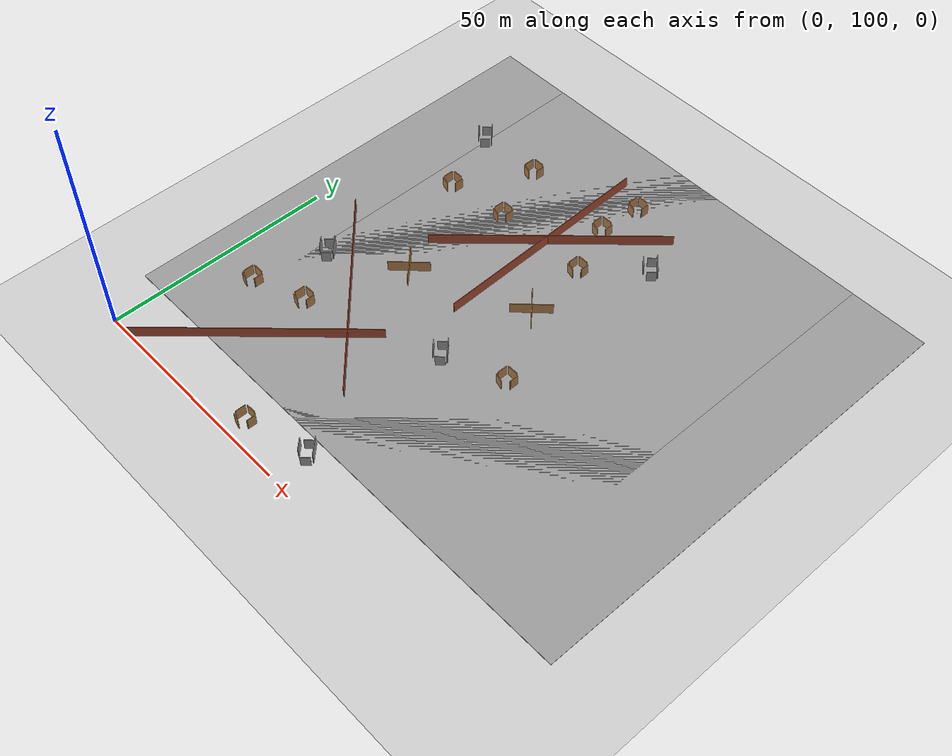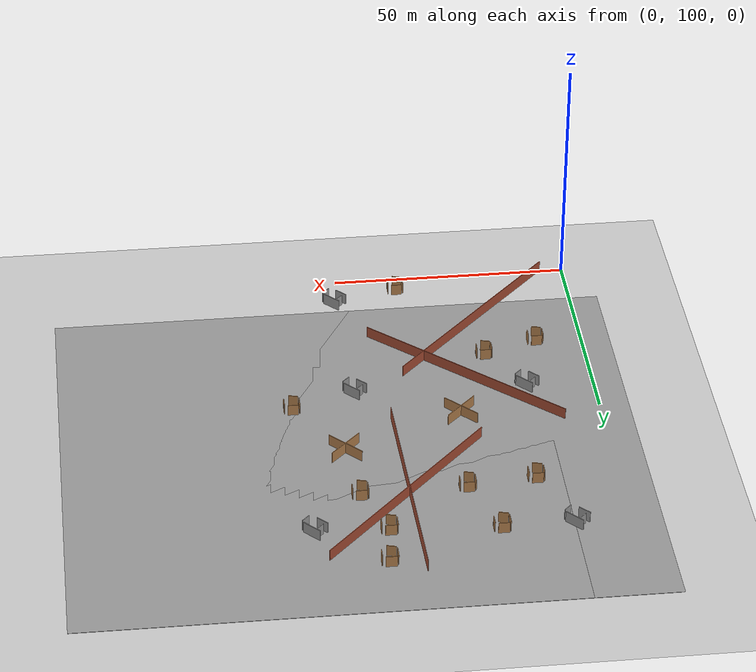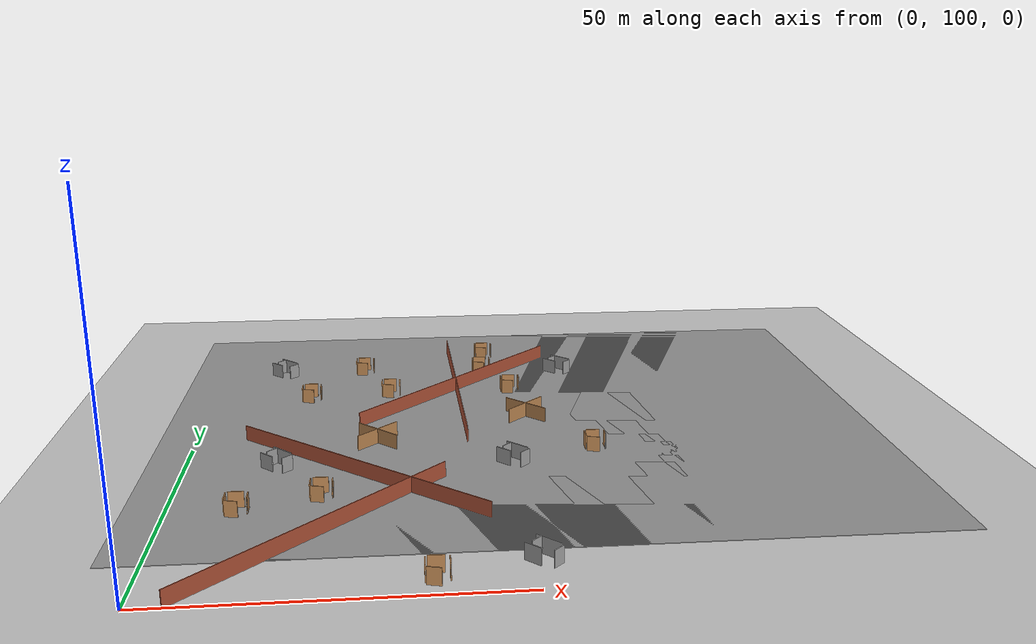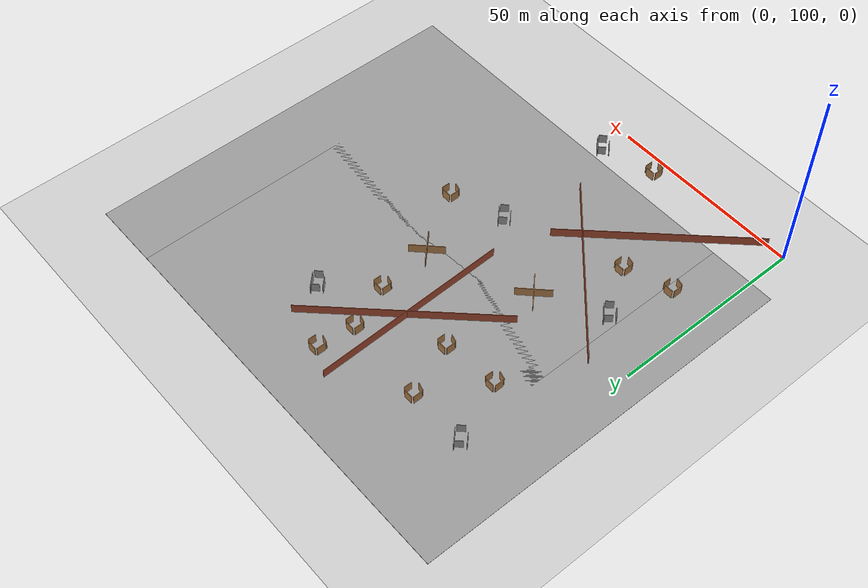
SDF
<sdf version="1.5">
 <world name="default">
  <model name="ground_plane">
   <static>1</static>
   <link name="link">
    <collision name="collision">
     <geometry><plane><normal>0 0 1</normal><size>100 100</size></plane></geometry>
     <surface><friction><ode><mu>100</mu><mu2>50</mu2></ode></friction></surface>
    </collision>
    <visual name="visual">
     <cast_shadows>0</cast_shadows>
     <geometry><plane><normal>0 0 1</normal><size>100 100</size></plane></geometry>
     <material>
      <script><uri>file://media/materials/scripts/gazebo.material</uri><name>Gazebo/Grey</name></script>
     </material>
    </visual>
   </link>
  </model>
  <model name="ground_plane_1">
   <static>1</static>
   <link name="link">
    <collision name="collision">
     <geometry><plane><normal>0 0 1</normal><size>100 100</size></plane></geometry>
     <surface><friction><ode><mu>100</mu><mu2>50</mu2></ode></friction></surface>
    </collision>
    <visual name="visual">
     <cast_shadows>0</cast_shadows>
     <geometry><plane><normal>0 0 1</normal><size>100 100</size></plane></geometry>
     <material>
      <script><uri>file://media/materials/scripts/gazebo.material</uri><name>Gazebo/Grey</name></script>
     </material>
    </visual>
   </link>
   <pose>61.4867 161 0 0 -0 0</pose>
  </model>
  <model name="ground_plane_2">
   <static>1</static>
   <link name="link">
    <collision name="collision">
     <geometry><plane><normal>0 0 1</normal><size>100 100</size></plane></geometry>
     <surface><friction><ode><mu>100</mu><mu2>50</mu2></ode></friction></surface>
    </collision>
    <visual name="visual">
     <cast_shadows>0</cast_shadows>
     <geometry><plane><normal>0 0 1</normal><size>100 100</size></plane></geometry>
     <material>
      <script><uri>file://media/materials/scripts/gazebo.material</uri><name>Gazebo/Grey</name></script>
     </material>
    </visual>
   </link>
   <pose>44 161 0 0 -0 0</pose>
  </model>
  <model name="obs1">
   <pose>31 174.534 0 0 -0 0</pose>
   <link name="Wall_10">
    <collision name="Wall_10_Collision">
     <geometry><box><size>2 0.15 2.5</size></box></geometry>
     <pose>0 0 1.25 0 -0 0</pose>
    </collision>
    <visual name="Wall_10_Visual">
     <pose>0 0 1.25 0 -0 0</pose>
     <geometry><box><size>2 0.15 2.5</size></box></geometry>
     <material>
      <script><uri>file://media/materials/scripts/gazebo.material</uri><name>Gazebo/Wood</name></script>
      <ambient>1 1 1 1</ambient>
     </material>
    </visual>
    <pose>-0.505188 -1.46687 0 0 0 -0.261799</pose>
   </link>
   <link name="Wall_2">
    <collision name="Wall_2_Collision">
     <geometry><box><size>2.25 0.15 2.5</size></box></geometry>
     <pose>0 0 1.25 0 -0 0</pose>
    </collision>
    <visual name="Wall_2_Visual">
     <pose>0 0 1.25 0 -0 0</pose>
     <geometry><box><size>2.25 0.15 2.5</size></box></geometry>
     <material>
      <script><uri>file://media/materials/scripts/gazebo.material</uri><name>Gazebo/Wood</name></script>
      <ambient>1 1 1 1</ambient>
     </material>
    </visual>
    <pose>-1.58039 0.313508 0 0 0 -1.5708</pose>
   </link>
   <link name="Wall_5">
    <collision name="Wall_5_Collision">
     <geometry><box><size>2.25 0.15 2.5</size></box></geometry>
     <pose>0 0 1.25 0 -0 0</pose>
    </collision>
    <visual name="Wall_5_Visual">
     <pose>0 0 1.25 0 -0 0</pose>
     <geometry><box><size>2.25 0.15 2.5</size></box></geometry>
     <material>
      <script><uri>file://media/materials/scripts/gazebo.material</uri><name>Gazebo/Wood</name></script>
      <ambient>1 1 1 1</ambient>
     </material>
    </visual>
    <pose>-0.185262 1.72313 0 0 -0 0</pose>
   </link>
   <link name="Wall_7">
    <collision name="Wall_7_Collision">
     <geometry><box><size>2 0.15 2.5</size></box></geometry>
     <pose>0 0 1.25 0 -0 0</pose>
    </collision>
    <visual name="Wall_7_Visual">
     <pose>0 0 1.25 0 -0 0</pose>
     <geometry><box><size>2 0.15 2.5</size></box></geometry>
     <material>
      <script><uri>file://media/materials/scripts/gazebo.material</uri><name>Gazebo/Wood</name></script>
      <ambient>1 1 1 1</ambient>
     </material>
    </visual>
    <pose>1.58039 0.398833 0 0 0 -1.5708</pose>
   </link>
   <link name="Wall_8">
    <collision name="Wall_8_Collision">
     <geometry><box><size>0.15 0.15 2.5</size></box></geometry>
     <pose>0 0 1.25 0 -0 0</pose>
    </collision>
    <visual name="Wall_8_Visual">
     <pose>0 0 1.25 0 -0 0</pose>
     <geometry><box><size>0.15 0.15 2.5</size></box></geometry>
     <material>
      <script><uri>file://media/materials/scripts/gazebo.material</uri><name>Gazebo/Grey</name></script>
      <ambient>1 1 1 1</ambient>
     </material>
    </visual>
    <pose>1.58039 -0.526167 0 0 -0 0</pose>
   </link>
   <static>1</static>
  </model>
  <model name="obs1_0">
   <pose>52.5346 175 0 0 -0 0</pose>
   <link name="Wall_10">
    <collision name="Wall_10_Collision">
     <geometry><box><size>2 0.15 2.5</size></box></geometry>
     <pose>0 0 1.25 0 -0 0</pose>
    </collision>
    <visual name="Wall_10_Visual">
     <pose>0 0 1.25 0 -0 0</pose>
     <geometry><box><size>2 0.15 2.5</size></box></geometry>
     <material>
      <script><uri>file://media/materials/scripts/gazebo.material</uri><name>Gazebo/Wood</name></script>
      <ambient>1 1 1 1</ambient>
     </material>
    </visual>
    <pose>-0.505188 -1.46687 0 0 0 -0.261799</pose>
   </link>
   <link name="Wall_2">
    <collision name="Wall_2_Collision">
     <geometry><box><size>2.25 0.15 2.5</size></box></geometry>
     <pose>0 0 1.25 0 -0 0</pose>
    </collision>
    <visual name="Wall_2_Visual">
     <pose>0 0 1.25 0 -0 0</pose>
     <geometry><box><size>2.25 0.15 2.5</size></box></geometry>
     <material>
      <script><uri>file://media/materials/scripts/gazebo.material</uri><name>Gazebo/Wood</name></script>
      <ambient>1 1 1 1</ambient>
     </material>
    </visual>
    <pose>-1.58039 0.313508 0 0 0 -1.5708</pose>
   </link>
   <link name="Wall_5">
    <collision name="Wall_5_Collision">
     <geometry><box><size>2.25 0.15 2.5</size></box></geometry>
     <pose>0 0 1.25 0 -0 0</pose>
    </collision>
    <visual name="Wall_5_Visual">
     <pose>0 0 1.25 0 -0 0</pose>
     <geometry><box><size>2.25 0.15 2.5</size></box></geometry>
     <material>
      <script><uri>file://media/materials/scripts/gazebo.material</uri><name>Gazebo/Wood</name></script>
      <ambient>1 1 1 1</ambient>
     </material>
    </visual>
    <pose>-0.185262 1.72313 0 0 -0 0</pose>
   </link>
   <link name="Wall_7">
    <collision name="Wall_7_Collision">
     <geometry><box><size>2 0.15 2.5</size></box></geometry>
     <pose>0 0 1.25 0 -0 0</pose>
    </collision>
    <visual name="Wall_7_Visual">
     <pose>0 0 1.25 0 -0 0</pose>
     <geometry><box><size>2 0.15 2.5</size></box></geometry>
     <material>
      <script><uri>file://media/materials/scripts/gazebo.material</uri><name>Gazebo/Wood</name></script>
      <ambient>1 1 1 1</ambient>
     </material>
    </visual>
    <pose>1.58039 0.398833 0 0 0 -1.5708</pose>
   </link>
   <link name="Wall_8">
    <collision name="Wall_8_Collision">
     <geometry><box><size>0.15 0.15 2.5</size></box></geometry>
     <pose>0 0 1.25 0 -0 0</pose>
    </collision>
    <visual name="Wall_8_Visual">
     <pose>0 0 1.25 0 -0 0</pose>
     <geometry><box><size>0.15 0.15 2.5</size></box></geometry>
     <material>
      <script><uri>file://media/materials/scripts/gazebo.material</uri><name>Gazebo/Grey</name></script>
      <ambient>1 1 1 1</ambient>
     </material>
    </visual>
    <pose>1.58039 -0.526167 0 0 -0 0</pose>
   </link>
   <static>1</static>
  </model>
  <model name="obs1_2">
   <pose>63.592 145.434 0 0 -0 0</pose>
   <link name="Wall_10">
    <collision name="Wall_10_Collision">
     <geometry><box><size>2 0.15 2.5</size></box></geometry>
     <pose>0 0 1.25 0 -0 0</pose>
    </collision>
    <visual name="Wall_10_Visual">
     <pose>0 0 1.25 0 -0 0</pose>
     <geometry><box><size>2 0.15 2.5</size></box></geometry>
     <material>
      <script><uri>file://media/materials/scripts/gazebo.material</uri><name>Gazebo/Wood</name></script>
      <ambient>1 1 1 1</ambient>
     </material>
    </visual>
    <pose>-0.505188 -1.46687 0 0 0 -0.261799</pose>
   </link>
   <link name="Wall_2">
    <collision name="Wall_2_Collision">
     <geometry><box><size>2.25 0.15 2.5</size></box></geometry>
     <pose>0 0 1.25 0 -0 0</pose>
    </collision>
    <visual name="Wall_2_Visual">
     <pose>0 0 1.25 0 -0 0</pose>
     <geometry><box><size>2.25 0.15 2.5</size></box></geometry>
     <material>
      <script><uri>file://media/materials/scripts/gazebo.material</uri><name>Gazebo/Wood</name></script>
      <ambient>1 1 1 1</ambient>
     </material>
    </visual>
    <pose>-1.58039 0.313508 0 0 0 -1.5708</pose>
   </link>
   <link name="Wall_5">
    <collision name="Wall_5_Collision">
     <geometry><box><size>2.25 0.15 2.5</size></box></geometry>
     <pose>0 0 1.25 0 -0 0</pose>
    </collision>
    <visual name="Wall_5_Visual">
     <pose>0 0 1.25 0 -0 0</pose>
     <geometry><box><size>2.25 0.15 2.5</size></box></geometry>
     <material>
      <script><uri>file://media/materials/scripts/gazebo.material</uri><name>Gazebo/Wood</name></script>
      <ambient>1 1 1 1</ambient>
     </material>
    </visual>
    <pose>-0.185262 1.72313 0 0 -0 0</pose>
   </link>
   <link name="Wall_7">
    <collision name="Wall_7_Collision">
     <geometry><box><size>2 0.15 2.5</size></box></geometry>
     <pose>0 0 1.25 0 -0 0</pose>
    </collision>
    <visual name="Wall_7_Visual">
     <pose>0 0 1.25 0 -0 0</pose>
     <geometry><box><size>2 0.15 2.5</size></box></geometry>
     <material>
      <script><uri>file://media/materials/scripts/gazebo.material</uri><name>Gazebo/Wood</name></script>
      <ambient>1 1 1 1</ambient>
     </material>
    </visual>
    <pose>1.58039 0.398833 0 0 0 -1.5708</pose>
   </link>
   <link name="Wall_8">
    <collision name="Wall_8_Collision">
     <geometry><box><size>0.15 0.15 2.5</size></box></geometry>
     <pose>0 0 1.25 0 -0 0</pose>
    </collision>
    <visual name="Wall_8_Visual">
     <pose>0 0 1.25 0 -0 0</pose>
     <geometry><box><size>0.15 0.15 2.5</size></box></geometry>
     <material>
      <script><uri>file://media/materials/scripts/gazebo.material</uri><name>Gazebo/Grey</name></script>
      <ambient>1 1 1 1</ambient>
     </material>
    </visual>
    <pose>1.58039 -0.526167 0 0 -0 0</pose>
   </link>
   <static>1</static>
  </model>
  <model name="obs3">
   <pose>29.0908 150.773 0 0 -0 0</pose>
   <link name="Wall_0">
    <collision name="Wall_0_Collision">
     <geometry><box><size>8.63528 0.15 2.5</size></box></geometry>
     <pose>0 0 1.25 0 -0 0</pose>
    </collision>
    <visual name="Wall_0_Visual">
     <pose>0 0 1.25 0 -0 0</pose>
     <geometry><box><size>8.63528 0.15 2.5</size></box></geometry>
     <material>
      <script><uri>file://media/materials/scripts/gazebo.material</uri><name>Gazebo/Wood</name></script>
      <ambient>1 1 1 1</ambient>
     </material>
    </visual>
    <pose>0 0 0 0 0 -0.785398</pose>
   </link>
   <link name="Wall_2">
    <collision name="Wall_2_Collision">
     <geometry><box><size>8.63528 0.15 2.5</size></box></geometry>
     <pose>0 0 1.25 0 -0 0</pose>
    </collision>
    <visual name="Wall_2_Visual">
     <pose>0 0 1.25 0 -0 0</pose>
     <geometry><box><size>8.63528 0.15 2.5</size></box></geometry>
     <material>
      <script><uri>file://media/materials/scripts/gazebo.material</uri><name>Gazebo/Wood</name></script>
      <ambient>1 1 1 1</ambient>
     </material>
    </visual>
    <pose>0 0 0 0 0 -2.35619</pose>
   </link>
   <static>1</static>
  </model>
  <model name="obs3_0">
   <pose>54 161 0 0 -0 0</pose>
   <link name="Wall_0">
    <collision name="Wall_0_Collision">
     <geometry><box><size>8.63528 0.15 2.5</size></box></geometry>
     <pose>0 0 1.25 0 -0 0</pose>
    </collision>
    <visual name="Wall_0_Visual">
     <pose>0 0 1.25 0 -0 0</pose>
     <geometry><box><size>8.63528 0.15 2.5</size></box></geometry>
     <material>
      <script><uri>file://media/materials/scripts/gazebo.material</uri><name>Gazebo/Wood</name></script>
      <ambient>1 1 1 1</ambient>
     </material>
    </visual>
    <pose>0 0 0 0 0 -0.785398</pose>
   </link>
   <link name="Wall_2">
    <collision name="Wall_2_Collision">
     <geometry><box><size>8.63528 0.15 2.5</size></box></geometry>
     <pose>0 0 1.25 0 -0 0</pose>
    </collision>
    <visual name="Wall_2_Visual">
     <pose>0 0 1.25 0 -0 0</pose>
     <geometry><box><size>8.63528 0.15 2.5</size></box></geometry>
     <material>
      <script><uri>file://media/materials/scripts/gazebo.material</uri><name>Gazebo/Wood</name></script>
      <ambient>1 1 1 1</ambient>
     </material>
    </visual>
    <pose>0 0 0 0 0 -2.35619</pose>
   </link>
   <static>1</static>
  </model>
  <model name="obs2_0">
   <pose>14 142 0 0 -0 0</pose>
   <link name="Wall_0">
    <collision name="Wall_0_Collision">
     <geometry><box><size>2 0.15 2.5</size></box></geometry>
     <pose>0 0 1.25 0 -0 0</pose>
    </collision>
    <visual name="Wall_0_Visual">
     <pose>0 0 1.25 0 -0 0</pose>
     <geometry><box><size>2 0.15 2.5</size></box></geometry>
     <material>
      <script><uri>file://media/materials/scripts/gazebo.material</uri><name>Gazebo/Grey</name></script>
      <ambient>1 1 1 1</ambient>
     </material>
    </visual>
    <pose>-0.796332 1.10862 0 0 -0 0.785398</pose>
   </link>
   <link name="Wall_2">
    <collision name="Wall_2_Collision">
     <geometry><box><size>4.25 0.15 2.5</size></box></geometry>
     <pose>0 0 1.25 0 -0 0</pose>
    </collision>
    <visual name="Wall_2_Visual">
     <pose>0 0 1.25 0 -0 0</pose>
     <geometry><box><size>4.25 0.15 2.5</size></box></geometry>
     <material>
      <script><uri>file://media/materials/scripts/gazebo.material</uri><name>Gazebo/Grey</name></script>
      <ambient>1 1 1 1</ambient>
     </material>
    </visual>
    <pose>0.773928 0.982661 0 0 0 -0.785398</pose>
   </link>
   <link name="Wall_4">
    <collision name="Wall_4_Collision">
     <geometry><box><size>2.75 0.15 2.5</size></box></geometry>
     <pose>0 0 1.25 0 -0 0</pose>
    </collision>
    <visual name="Wall_4_Visual">
     <pose>0 0 1.25 0 -0 0</pose>
     <geometry><box><size>2.75 0.15 2.5</size></box></geometry>
     <material>
      <script><uri>file://media/materials/scripts/gazebo.material</uri><name>Gazebo/Grey</name></script>
      <ambient>1 1 1 1</ambient>
     </material>
    </visual>
    <pose>-1.45556 -0.740711 0 0 0 -0.785398</pose>
   </link>
   <link name="Wall_6">
    <collision name="Wall_6_Collision">
     <geometry><box><size>2 0.15 2.5</size></box></geometry>
     <pose>0 0 1.25 0 -0 0</pose>
    </collision>
    <visual name="Wall_6_Visual">
     <pose>0 0 1.25 0 -0 0</pose>
     <geometry><box><size>2 0.15 2.5</size></box></geometry>
     <material>
      <script><uri>file://media/materials/scripts/gazebo.material</uri><name>Gazebo/Grey</name></script>
      <ambient>1 1 1 1</ambient>
     </material>
    </visual>
    <pose>1.72073 -1.77816 0 0 -0 0.785398</pose>
   </link>
   <static>1</static>
  </model>
  <model name="wall1_clone">
   <pose>43.1975 176.615 0 0 -0 0.808575</pose>
   <link name="Wall_0">
    <collision name="Wall_0_Collision">
     <geometry><box><size>50 0.15 2.5</size></box></geometry>
     <pose>0 0 1.25 0 -0 0</pose>
    </collision>
    <visual name="Wall_0_Visual">
     <pose>0 0 1.25 0 -0 0</pose>
     <geometry><box><size>50 0.15 2.5</size></box></geometry>
     <material>
      <script><uri>file://media/materials/scripts/gazebo.material</uri><name>Gazebo/Bricks</name></script>
      <ambient>1 1 1 1</ambient>
     </material>
    </visual>
    <pose>1e-06 0 0 0 -0 3.14159</pose>
   </link>
   <static>1</static>
  </model>
  <model name="wall1_clone_0">
   <pose>26.6122 137.564 0 0 -0 2.41454</pose>
   <link name="Wall_0">
    <collision name="Wall_0_Collision">
     <geometry><box><size>50 0.15 2.5</size></box></geometry>
     <pose>0 0 1.25 0 -0 0</pose>
    </collision>
    <visual name="Wall_0_Visual">
     <pose>0 0 1.25 0 -0 0</pose>
     <geometry><box><size>50 0.15 2.5</size></box></geometry>
     <material>
      <script><uri>file://media/materials/scripts/gazebo.material</uri><name>Gazebo/Bricks</name></script>
      <ambient>1 1 1 1</ambient>
     </material>
    </visual>
    <pose>1e-06 0 0 0 -0 3.14159</pose>
   </link>
   <static>1</static>
  </model>
  <model name="wall1_clone_6">
   <pose>42.7649 174.914 0 0 -0 1.60154</pose>
   <link name="Wall_0">
    <collision name="Wall_0_Collision">
     <geometry><box><size>50 0.15 2.5</size></box></geometry>
     <pose>0 0 1.25 0 -0 0</pose>
    </collision>
    <visual name="Wall_0_Visual">
     <pose>0 0 1.25 0 -0 0</pose>
     <geometry><box><size>50 0.15 2.5</size></box></geometry>
     <material>
      <script><uri>file://media/materials/scripts/gazebo.material</uri><name>Gazebo/Bricks</name></script>
      <ambient>1 1 1 1</ambient>
     </material>
    </visual>
    <pose>1e-06 0 0 0 -0 3.14159</pose>
   </link>
   <static>1</static>
  </model>
  <model name="wall1_clone_7">
   <pose>22.1641 117.941 0 0 -0 0.808575</pose>
   <link name="Wall_0">
    <collision name="Wall_0_Collision">
     <geometry><box><size>50 0.15 2.5</size></box></geometry>
     <pose>0 0 1.25 0 -0 0</pose>
    </collision>
    <visual name="Wall_0_Visual">
     <pose>0 0 1.25 0 -0 0</pose>
     <geometry><box><size>50 0.15 2.5</size></box></geometry>
     <material>
      <script><uri>file://media/materials/scripts/gazebo.material</uri><name>Gazebo/Bricks</name></script>
      <ambient>1 1 1 1</ambient>
     </material>
    </visual>
    <pose>1e-06 0 0 0 -0 3.14159</pose>
   </link>
   <static>1</static>
  </model>
  <model name="obs2_3">
   <pose>11 188 0 0 -0 0</pose>
   <link name="Wall_0">
    <collision name="Wall_0_Collision">
     <geometry><box><size>2 0.15 2.5</size></box></geometry>
     <pose>0 0 1.25 0 -0 0</pose>
    </collision>
    <visual name="Wall_0_Visual">
     <pose>0 0 1.25 0 -0 0</pose>
     <geometry><box><size>2 0.15 2.5</size></box></geometry>
     <material>
      <script><uri>file://media/materials/scripts/gazebo.material</uri><name>Gazebo/Grey</name></script>
      <ambient>1 1 1 1</ambient>
     </material>
    </visual>
    <pose>-0.796332 1.10862 0 0 -0 0.785398</pose>
   </link>
   <link name="Wall_2">
    <collision name="Wall_2_Collision">
     <geometry><box><size>4.25 0.15 2.5</size></box></geometry>
     <pose>0 0 1.25 0 -0 0</pose>
    </collision>
    <visual name="Wall_2_Visual">
     <pose>0 0 1.25 0 -0 0</pose>
     <geometry><box><size>4.25 0.15 2.5</size></box></geometry>
     <material>
      <script><uri>file://media/materials/scripts/gazebo.material</uri><name>Gazebo/Grey</name></script>
      <ambient>1 1 1 1</ambient>
     </material>
    </visual>
    <pose>0.773928 0.982661 0 0 0 -0.785398</pose>
   </link>
   <link name="Wall_4">
    <collision name="Wall_4_Collision">
     <geometry><box><size>2.75 0.15 2.5</size></box></geometry>
     <pose>0 0 1.25 0 -0 0</pose>
    </collision>
    <visual name="Wall_4_Visual">
     <pose>0 0 1.25 0 -0 0</pose>
     <geometry><box><size>2.75 0.15 2.5</size></box></geometry>
     <material>
      <script><uri>file://media/materials/scripts/gazebo.material</uri><name>Gazebo/Grey</name></script>
      <ambient>1 1 1 1</ambient>
     </material>
    </visual>
    <pose>-1.45556 -0.740711 0 0 0 -0.785398</pose>
   </link>
   <link name="Wall_6">
    <collision name="Wall_6_Collision">
     <geometry><box><size>2 0.15 2.5</size></box></geometry>
     <pose>0 0 1.25 0 -0 0</pose>
    </collision>
    <visual name="Wall_6_Visual">
     <pose>0 0 1.25 0 -0 0</pose>
     <geometry><box><size>2 0.15 2.5</size></box></geometry>
     <material>
      <script><uri>file://media/materials/scripts/gazebo.material</uri><name>Gazebo/Grey</name></script>
      <ambient>1 1 1 1</ambient>
     </material>
    </visual>
    <pose>1.72073 -1.77816 0 0 -0 0.785398</pose>
   </link>
   <static>1</static>
  </model>
  <model name="obs1_clone">
   <pose>17 173 0 0 -0 0</pose>
   <link name="Wall_10">
    <collision name="Wall_10_Collision">
     <geometry><box><size>2 0.15 2.5</size></box></geometry>
     <pose>0 0 1.25 0 -0 0</pose>
    </collision>
    <visual name="Wall_10_Visual">
     <pose>0 0 1.25 0 -0 0</pose>
     <geometry><box><size>2 0.15 2.5</size></box></geometry>
     <material>
      <script><uri>file://media/materials/scripts/gazebo.material</uri><name>Gazebo/Wood</name></script>
      <ambient>1 1 1 1</ambient>
     </material>
    </visual>
    <pose>-0.505188 -1.46687 0 0 0 -0.261799</pose>
   </link>
   <link name="Wall_2">
    <collision name="Wall_2_Collision">
     <geometry><box><size>2.25 0.15 2.5</size></box></geometry>
     <pose>0 0 1.25 0 -0 0</pose>
    </collision>
    <visual name="Wall_2_Visual">
     <pose>0 0 1.25 0 -0 0</pose>
     <geometry><box><size>2.25 0.15 2.5</size></box></geometry>
     <material>
      <script><uri>file://media/materials/scripts/gazebo.material</uri><name>Gazebo/Wood</name></script>
      <ambient>1 1 1 1</ambient>
     </material>
    </visual>
    <pose>-1.58039 0.313508 0 0 0 -1.5708</pose>
   </link>
   <link name="Wall_5">
    <collision name="Wall_5_Collision">
     <geometry><box><size>2.25 0.15 2.5</size></box></geometry>
     <pose>0 0 1.25 0 -0 0</pose>
    </collision>
    <visual name="Wall_5_Visual">
     <pose>0 0 1.25 0 -0 0</pose>
     <geometry><box><size>2.25 0.15 2.5</size></box></geometry>
     <material>
      <script><uri>file://media/materials/scripts/gazebo.material</uri><name>Gazebo/Wood</name></script>
      <ambient>1 1 1 1</ambient>
     </material>
    </visual>
    <pose>-0.185262 1.72313 0 0 -0 0</pose>
   </link>
   <link name="Wall_7">
    <collision name="Wall_7_Collision">
     <geometry><box><size>2 0.15 2.5</size></box></geometry>
     <pose>0 0 1.25 0 -0 0</pose>
    </collision>
    <visual name="Wall_7_Visual">
     <pose>0 0 1.25 0 -0 0</pose>
     <geometry><box><size>2 0.15 2.5</size></box></geometry>
     <material>
      <script><uri>file://media/materials/scripts/gazebo.material</uri><name>Gazebo/Wood</name></script>
      <ambient>1 1 1 1</ambient>
     </material>
    </visual>
    <pose>1.58039 0.398833 0 0 0 -1.5708</pose>
   </link>
   <link name="Wall_8">
    <collision name="Wall_8_Collision">
     <geometry><box><size>0.15 0.15 2.5</size></box></geometry>
     <pose>0 0 1.25 0 -0 0</pose>
    </collision>
    <visual name="Wall_8_Visual">
     <pose>0 0 1.25 0 -0 0</pose>
     <geometry><box><size>0.15 0.15 2.5</size></box></geometry>
     <material>
      <script><uri>file://media/materials/scripts/gazebo.material</uri><name>Gazebo/Grey</name></script>
      <ambient>1 1 1 1</ambient>
     </material>
    </visual>
    <pose>1.58039 -0.526167 0 0 -0 0</pose>
   </link>
   <static>1</static>
  </model>
  <model name="obs1_clone_0">
   <pose>26 188 0 0 -0 0</pose>
   <link name="Wall_10">
    <collision name="Wall_10_Collision">
     <geometry><box><size>2 0.15 2.5</size></box></geometry>
     <pose>0 0 1.25 0 -0 0</pose>
    </collision>
    <visual name="Wall_10_Visual">
     <pose>0 0 1.25 0 -0 0</pose>
     <geometry><box><size>2 0.15 2.5</size></box></geometry>
     <material>
      <script><uri>file://media/materials/scripts/gazebo.material</uri><name>Gazebo/Wood</name></script>
      <ambient>1 1 1 1</ambient>
     </material>
    </visual>
    <pose>-0.505188 -1.46687 0 0 0 -0.261799</pose>
   </link>
   <link name="Wall_2">
    <collision name="Wall_2_Collision">
     <geometry><box><size>2.25 0.15 2.5</size></box></geometry>
     <pose>0 0 1.25 0 -0 0</pose>
    </collision>
    <visual name="Wall_2_Visual">
     <pose>0 0 1.25 0 -0 0</pose>
     <geometry><box><size>2.25 0.15 2.5</size></box></geometry>
     <material>
      <script><uri>file://media/materials/scripts/gazebo.material</uri><name>Gazebo/Wood</name></script>
      <ambient>1 1 1 1</ambient>
     </material>
    </visual>
    <pose>-1.58039 0.313508 0 0 0 -1.5708</pose>
   </link>
   <link name="Wall_5">
    <collision name="Wall_5_Collision">
     <geometry><box><size>2.25 0.15 2.5</size></box></geometry>
     <pose>0 0 1.25 0 -0 0</pose>
    </collision>
    <visual name="Wall_5_Visual">
     <pose>0 0 1.25 0 -0 0</pose>
     <geometry><box><size>2.25 0.15 2.5</size></box></geometry>
     <material>
      <script><uri>file://media/materials/scripts/gazebo.material</uri><name>Gazebo/Wood</name></script>
      <ambient>1 1 1 1</ambient>
     </material>
    </visual>
    <pose>-0.185262 1.72313 0 0 -0 0</pose>
   </link>
   <link name="Wall_7">
    <collision name="Wall_7_Collision">
     <geometry><box><size>2 0.15 2.5</size></box></geometry>
     <pose>0 0 1.25 0 -0 0</pose>
    </collision>
    <visual name="Wall_7_Visual">
     <pose>0 0 1.25 0 -0 0</pose>
     <geometry><box><size>2 0.15 2.5</size></box></geometry>
     <material>
      <script><uri>file://media/materials/scripts/gazebo.material</uri><name>Gazebo/Wood</name></script>
      <ambient>1 1 1 1</ambient>
     </material>
    </visual>
    <pose>1.58039 0.398833 0 0 0 -1.5708</pose>
   </link>
   <link name="Wall_8">
    <collision name="Wall_8_Collision">
     <geometry><box><size>0.15 0.15 2.5</size></box></geometry>
     <pose>0 0 1.25 0 -0 0</pose>
    </collision>
    <visual name="Wall_8_Visual">
     <pose>0 0 1.25 0 -0 0</pose>
     <geometry><box><size>0.15 0.15 2.5</size></box></geometry>
     <material>
      <script><uri>file://media/materials/scripts/gazebo.material</uri><name>Gazebo/Grey</name></script>
      <ambient>1 1 1 1</ambient>
     </material>
    </visual>
    <pose>1.58039 -0.526167 0 0 -0 0</pose>
   </link>
   <static>1</static>
  </model>
  <model name="obs1_clone_1">
   <pose>48 186.456 0 0 -0 0</pose>
   <link name="Wall_10">
    <collision name="Wall_10_Collision">
     <geometry><box><size>2 0.15 2.5</size></box></geometry>
     <pose>0 0 1.25 0 -0 0</pose>
    </collision>
    <visual name="Wall_10_Visual">
     <pose>0 0 1.25 0 -0 0</pose>
     <geometry><box><size>2 0.15 2.5</size></box></geometry>
     <material>
      <script><uri>file://media/materials/scripts/gazebo.material</uri><name>Gazebo/Wood</name></script>
      <ambient>1 1 1 1</ambient>
     </material>
    </visual>
    <pose>-0.505188 -1.46687 0 0 0 -0.261799</pose>
   </link>
   <link name="Wall_2">
    <collision name="Wall_2_Collision">
     <geometry><box><size>2.25 0.15 2.5</size></box></geometry>
     <pose>0 0 1.25 0 -0 0</pose>
    </collision>
    <visual name="Wall_2_Visual">
     <pose>0 0 1.25 0 -0 0</pose>
     <geometry><box><size>2.25 0.15 2.5</size></box></geometry>
     <material>
      <script><uri>file://media/materials/scripts/gazebo.material</uri><name>Gazebo/Wood</name></script>
      <ambient>1 1 1 1</ambient>
     </material>
    </visual>
    <pose>-1.58039 0.313508 0 0 0 -1.5708</pose>
   </link>
   <link name="Wall_5">
    <collision name="Wall_5_Collision">
     <geometry><box><size>2.25 0.15 2.5</size></box></geometry>
     <pose>0 0 1.25 0 -0 0</pose>
    </collision>
    <visual name="Wall_5_Visual">
     <pose>0 0 1.25 0 -0 0</pose>
     <geometry><box><size>2.25 0.15 2.5</size></box></geometry>
     <material>
      <script><uri>file://media/materials/scripts/gazebo.material</uri><name>Gazebo/Wood</name></script>
      <ambient>1 1 1 1</ambient>
     </material>
    </visual>
    <pose>-0.185262 1.72313 0 0 -0 0</pose>
   </link>
   <link name="Wall_7">
    <collision name="Wall_7_Collision">
     <geometry><box><size>2 0.15 2.5</size></box></geometry>
     <pose>0 0 1.25 0 -0 0</pose>
    </collision>
    <visual name="Wall_7_Visual">
     <pose>0 0 1.25 0 -0 0</pose>
     <geometry><box><size>2 0.15 2.5</size></box></geometry>
     <material>
      <script><uri>file://media/materials/scripts/gazebo.material</uri><name>Gazebo/Wood</name></script>
      <ambient>1 1 1 1</ambient>
     </material>
    </visual>
    <pose>1.58039 0.398833 0 0 0 -1.5708</pose>
   </link>
   <link name="Wall_8">
    <collision name="Wall_8_Collision">
     <geometry><box><size>0.15 0.15 2.5</size></box></geometry>
     <pose>0 0 1.25 0 -0 0</pose>
    </collision>
    <visual name="Wall_8_Visual">
     <pose>0 0 1.25 0 -0 0</pose>
     <geometry><box><size>0.15 0.15 2.5</size></box></geometry>
     <material>
      <script><uri>file://media/materials/scripts/gazebo.material</uri><name>Gazebo/Grey</name></script>
      <ambient>1 1 1 1</ambient>
     </material>
    </visual>
    <pose>1.58039 -0.526167 0 0 -0 0</pose>
   </link>
   <static>1</static>
  </model>
  <model name="obs1_clone_2">
   <pose>49 196 0 0 -0 0</pose>
   <link name="Wall_10">
    <collision name="Wall_10_Collision">
     <geometry><box><size>2 0.15 2.5</size></box></geometry>
     <pose>0 0 1.25 0 -0 0</pose>
    </collision>
    <visual name="Wall_10_Visual">
     <pose>0 0 1.25 0 -0 0</pose>
     <geometry><box><size>2 0.15 2.5</size></box></geometry>
     <material>
      <script><uri>file://media/materials/scripts/gazebo.material</uri><name>Gazebo/Wood</name></script>
      <ambient>1 1 1 1</ambient>
     </material>
    </visual>
    <pose>-0.505188 -1.46687 0 0 0 -0.261799</pose>
   </link>
   <link name="Wall_2">
    <collision name="Wall_2_Collision">
     <geometry><box><size>2.25 0.15 2.5</size></box></geometry>
     <pose>0 0 1.25 0 -0 0</pose>
    </collision>
    <visual name="Wall_2_Visual">
     <pose>0 0 1.25 0 -0 0</pose>
     <geometry><box><size>2.25 0.15 2.5</size></box></geometry>
     <material>
      <script><uri>file://media/materials/scripts/gazebo.material</uri><name>Gazebo/Wood</name></script>
      <ambient>1 1 1 1</ambient>
     </material>
    </visual>
    <pose>-1.58039 0.313508 0 0 0 -1.5708</pose>
   </link>
   <link name="Wall_5">
    <collision name="Wall_5_Collision">
     <geometry><box><size>2.25 0.15 2.5</size></box></geometry>
     <pose>0 0 1.25 0 -0 0</pose>
    </collision>
    <visual name="Wall_5_Visual">
     <pose>0 0 1.25 0 -0 0</pose>
     <geometry><box><size>2.25 0.15 2.5</size></box></geometry>
     <material>
      <script><uri>file://media/materials/scripts/gazebo.material</uri><name>Gazebo/Wood</name></script>
      <ambient>1 1 1 1</ambient>
     </material>
    </visual>
    <pose>-0.185262 1.72313 0 0 -0 0</pose>
   </link>
   <link name="Wall_7">
    <collision name="Wall_7_Collision">
     <geometry><box><size>2 0.15 2.5</size></box></geometry>
     <pose>0 0 1.25 0 -0 0</pose>
    </collision>
    <visual name="Wall_7_Visual">
     <pose>0 0 1.25 0 -0 0</pose>
     <geometry><box><size>2 0.15 2.5</size></box></geometry>
     <material>
      <script><uri>file://media/materials/scripts/gazebo.material</uri><name>Gazebo/Wood</name></script>
      <ambient>1 1 1 1</ambient>
     </material>
    </visual>
    <pose>1.58039 0.398833 0 0 0 -1.5708</pose>
   </link>
   <link name="Wall_8">
    <collision name="Wall_8_Collision">
     <geometry><box><size>0.15 0.15 2.5</size></box></geometry>
     <pose>0 0 1.25 0 -0 0</pose>
    </collision>
    <visual name="Wall_8_Visual">
     <pose>0 0 1.25 0 -0 0</pose>
     <geometry><box><size>0.15 0.15 2.5</size></box></geometry>
     <material>
      <script><uri>file://media/materials/scripts/gazebo.material</uri><name>Gazebo/Grey</name></script>
      <ambient>1 1 1 1</ambient>
     </material>
    </visual>
    <pose>1.58039 -0.526167 0 0 -0 0</pose>
   </link>
   <static>1</static>
  </model>
  <model name="obs1_clone_9">
   <pose>37.4099 104 0 0 -0 0</pose>
   <link name="Wall_10">
    <collision name="Wall_10_Collision">
     <geometry><box><size>2 0.15 2.5</size></box></geometry>
     <pose>0 0 1.25 0 -0 0</pose>
    </collision>
    <visual name="Wall_10_Visual">
     <pose>0 0 1.25 0 -0 0</pose>
     <geometry><box><size>2 0.15 2.5</size></box></geometry>
     <material>
      <script><uri>file://media/materials/scripts/gazebo.material</uri><name>Gazebo/Wood</name></script>
      <ambient>1 1 1 1</ambient>
     </material>
    </visual>
    <pose>-0.505188 -1.46687 0 0 0 -0.261799</pose>
   </link>
   <link name="Wall_2">
    <collision name="Wall_2_Collision">
     <geometry><box><size>2.25 0.15 2.5</size></box></geometry>
     <pose>0 0 1.25 0 -0 0</pose>
    </collision>
    <visual name="Wall_2_Visual">
     <pose>0 0 1.25 0 -0 0</pose>
     <geometry><box><size>2.25 0.15 2.5</size></box></geometry>
     <material>
      <script><uri>file://media/materials/scripts/gazebo.material</uri><name>Gazebo/Wood</name></script>
      <ambient>1 1 1 1</ambient>
     </material>
    </visual>
    <pose>-1.58039 0.313508 0 0 0 -1.5708</pose>
   </link>
   <link name="Wall_5">
    <collision name="Wall_5_Collision">
     <geometry><box><size>2.25 0.15 2.5</size></box></geometry>
     <pose>0 0 1.25 0 -0 0</pose>
    </collision>
    <visual name="Wall_5_Visual">
     <pose>0 0 1.25 0 -0 0</pose>
     <geometry><box><size>2.25 0.15 2.5</size></box></geometry>
     <material>
      <script><uri>file://media/materials/scripts/gazebo.material</uri><name>Gazebo/Wood</name></script>
      <ambient>1 1 1 1</ambient>
     </material>
    </visual>
    <pose>-0.185262 1.72313 0 0 -0 0</pose>
   </link>
   <link name="Wall_7">
    <collision name="Wall_7_Collision">
     <geometry><box><size>2 0.15 2.5</size></box></geometry>
     <pose>0 0 1.25 0 -0 0</pose>
    </collision>
    <visual name="Wall_7_Visual">
     <pose>0 0 1.25 0 -0 0</pose>
     <geometry><box><size>2 0.15 2.5</size></box></geometry>
     <material>
      <script><uri>file://media/materials/scripts/gazebo.material</uri><name>Gazebo/Wood</name></script>
      <ambient>1 1 1 1</ambient>
     </material>
    </visual>
    <pose>1.58039 0.398833 0 0 0 -1.5708</pose>
   </link>
   <link name="Wall_8">
    <collision name="Wall_8_Collision">
     <geometry><box><size>0.15 0.15 2.5</size></box></geometry>
     <pose>0 0 1.25 0 -0 0</pose>
    </collision>
    <visual name="Wall_8_Visual">
     <pose>0 0 1.25 0 -0 0</pose>
     <geometry><box><size>0.15 0.15 2.5</size></box></geometry>
     <material>
      <script><uri>file://media/materials/scripts/gazebo.material</uri><name>Gazebo/Grey</name></script>
      <ambient>1 1 1 1</ambient>
     </material>
    </visual>
    <pose>1.58039 -0.526167 0 0 -0 0</pose>
   </link>
   <static>1</static>
  </model>
  <model name="obs1_clone_10">
   <pose>10 126 0 0 -0 0</pose>
   <link name="Wall_10">
    <collision name="Wall_10_Collision">
     <geometry><box><size>2 0.15 2.5</size></box></geometry>
     <pose>0 0 1.25 0 -0 0</pose>
    </collision>
    <visual name="Wall_10_Visual">
     <pose>0 0 1.25 0 -0 0</pose>
     <geometry><box><size>2 0.15 2.5</size></box></geometry>
     <material>
      <script><uri>file://media/materials/scripts/gazebo.material</uri><name>Gazebo/Wood</name></script>
      <ambient>1 1 1 1</ambient>
     </material>
    </visual>
    <pose>-0.505188 -1.46687 0 0 0 -0.261799</pose>
   </link>
   <link name="Wall_2">
    <collision name="Wall_2_Collision">
     <geometry><box><size>2.25 0.15 2.5</size></box></geometry>
     <pose>0 0 1.25 0 -0 0</pose>
    </collision>
    <visual name="Wall_2_Visual">
     <pose>0 0 1.25 0 -0 0</pose>
     <geometry><box><size>2.25 0.15 2.5</size></box></geometry>
     <material>
      <script><uri>file://media/materials/scripts/gazebo.material</uri><name>Gazebo/Wood</name></script>
      <ambient>1 1 1 1</ambient>
     </material>
    </visual>
    <pose>-1.58039 0.313508 0 0 0 -1.5708</pose>
   </link>
   <link name="Wall_5">
    <collision name="Wall_5_Collision">
     <geometry><box><size>2.25 0.15 2.5</size></box></geometry>
     <pose>0 0 1.25 0 -0 0</pose>
    </collision>
    <visual name="Wall_5_Visual">
     <pose>0 0 1.25 0 -0 0</pose>
     <geometry><box><size>2.25 0.15 2.5</size></box></geometry>
     <material>
      <script><uri>file://media/materials/scripts/gazebo.material</uri><name>Gazebo/Wood</name></script>
      <ambient>1 1 1 1</ambient>
     </material>
    </visual>
    <pose>-0.185262 1.72313 0 0 -0 0</pose>
   </link>
   <link name="Wall_7">
    <collision name="Wall_7_Collision">
     <geometry><box><size>2 0.15 2.5</size></box></geometry>
     <pose>0 0 1.25 0 -0 0</pose>
    </collision>
    <visual name="Wall_7_Visual">
     <pose>0 0 1.25 0 -0 0</pose>
     <geometry><box><size>2 0.15 2.5</size></box></geometry>
     <material>
      <script><uri>file://media/materials/scripts/gazebo.material</uri><name>Gazebo/Wood</name></script>
      <ambient>1 1 1 1</ambient>
     </material>
    </visual>
    <pose>1.58039 0.398833 0 0 0 -1.5708</pose>
   </link>
   <link name="Wall_8">
    <collision name="Wall_8_Collision">
     <geometry><box><size>0.15 0.15 2.5</size></box></geometry>
     <pose>0 0 1.25 0 -0 0</pose>
    </collision>
    <visual name="Wall_8_Visual">
     <pose>0 0 1.25 0 -0 0</pose>
     <geometry><box><size>0.15 0.15 2.5</size></box></geometry>
     <material>
      <script><uri>file://media/materials/scripts/gazebo.material</uri><name>Gazebo/Grey</name></script>
      <ambient>1 1 1 1</ambient>
     </material>
    </visual>
    <pose>1.58039 -0.526167 0 0 -0 0</pose>
   </link>
   <static>1</static>
  </model>
  <model name="obs1_clone_11">
   <pose>21.5003 130 0 0 -0 0</pose>
   <link name="Wall_10">
    <collision name="Wall_10_Collision">
     <geometry><box><size>2 0.15 2.5</size></box></geometry>
     <pose>0 0 1.25 0 -0 0</pose>
    </collision>
    <visual name="Wall_10_Visual">
     <pose>0 0 1.25 0 -0 0</pose>
     <geometry><box><size>2 0.15 2.5</size></box></geometry>
     <material>
      <script><uri>file://media/materials/scripts/gazebo.material</uri><name>Gazebo/Wood</name></script>
      <ambient>1 1 1 1</ambient>
     </material>
    </visual>
    <pose>-0.505188 -1.46687 0 0 0 -0.261799</pose>
   </link>
   <link name="Wall_2">
    <collision name="Wall_2_Collision">
     <geometry><box><size>2.25 0.15 2.5</size></box></geometry>
     <pose>0 0 1.25 0 -0 0</pose>
    </collision>
    <visual name="Wall_2_Visual">
     <pose>0 0 1.25 0 -0 0</pose>
     <geometry><box><size>2.25 0.15 2.5</size></box></geometry>
     <material>
      <script><uri>file://media/materials/scripts/gazebo.material</uri><name>Gazebo/Wood</name></script>
      <ambient>1 1 1 1</ambient>
     </material>
    </visual>
    <pose>-1.58039 0.313508 0 0 0 -1.5708</pose>
   </link>
   <link name="Wall_5">
    <collision name="Wall_5_Collision">
     <geometry><box><size>2.25 0.15 2.5</size></box></geometry>
     <pose>0 0 1.25 0 -0 0</pose>
    </collision>
    <visual name="Wall_5_Visual">
     <pose>0 0 1.25 0 -0 0</pose>
     <geometry><box><size>2.25 0.15 2.5</size></box></geometry>
     <material>
      <script><uri>file://media/materials/scripts/gazebo.material</uri><name>Gazebo/Wood</name></script>
      <ambient>1 1 1 1</ambient>
     </material>
    </visual>
    <pose>-0.185262 1.72313 0 0 -0 0</pose>
   </link>
   <link name="Wall_7">
    <collision name="Wall_7_Collision">
     <geometry><box><size>2 0.15 2.5</size></box></geometry>
     <pose>0 0 1.25 0 -0 0</pose>
    </collision>
    <visual name="Wall_7_Visual">
     <pose>0 0 1.25 0 -0 0</pose>
     <geometry><box><size>2 0.15 2.5</size></box></geometry>
     <material>
      <script><uri>file://media/materials/scripts/gazebo.material</uri><name>Gazebo/Wood</name></script>
      <ambient>1 1 1 1</ambient>
     </material>
    </visual>
    <pose>1.58039 0.398833 0 0 0 -1.5708</pose>
   </link>
   <link name="Wall_8">
    <collision name="Wall_8_Collision">
     <geometry><box><size>0.15 0.15 2.5</size></box></geometry>
     <pose>0 0 1.25 0 -0 0</pose>
    </collision>
    <visual name="Wall_8_Visual">
     <pose>0 0 1.25 0 -0 0</pose>
     <geometry><box><size>0.15 0.15 2.5</size></box></geometry>
     <material>
      <script><uri>file://media/materials/scripts/gazebo.material</uri><name>Gazebo/Grey</name></script>
      <ambient>1 1 1 1</ambient>
     </material>
    </visual>
    <pose>1.58039 -0.526167 0 0 -0 0</pose>
   </link>
   <static>1</static>
  </model>
  <model name="obs2_5_clone_clone_clone_0">
   <pose>50 141 0 0 -0 0</pose>
   <link name="Wall_0">
    <collision name="Wall_0_Collision">
     <geometry><box><size>2 0.15 2.5</size></box></geometry>
     <pose>0 0 1.25 0 -0 0</pose>
    </collision>
    <visual name="Wall_0_Visual">
     <pose>0 0 1.25 0 -0 0</pose>
     <geometry><box><size>2 0.15 2.5</size></box></geometry>
     <material>
      <script><uri>file://media/materials/scripts/gazebo.material</uri><name>Gazebo/Grey</name></script>
      <ambient>1 1 1 1</ambient>
     </material>
    </visual>
    <pose>-0.796332 1.10862 0 0 -0 0.785398</pose>
   </link>
   <link name="Wall_2">
    <collision name="Wall_2_Collision">
     <geometry><box><size>4.25 0.15 2.5</size></box></geometry>
     <pose>0 0 1.25 0 -0 0</pose>
    </collision>
    <visual name="Wall_2_Visual">
     <pose>0 0 1.25 0 -0 0</pose>
     <geometry><box><size>4.25 0.15 2.5</size></box></geometry>
     <material>
      <script><uri>file://media/materials/scripts/gazebo.material</uri><name>Gazebo/Grey</name></script>
      <ambient>1 1 1 1</ambient>
     </material>
    </visual>
    <pose>0.773928 0.982661 0 0 0 -0.785398</pose>
   </link>
   <link name="Wall_4">
    <collision name="Wall_4_Collision">
     <geometry><box><size>2.75 0.15 2.5</size></box></geometry>
     <pose>0 0 1.25 0 -0 0</pose>
    </collision>
    <visual name="Wall_4_Visual">
     <pose>0 0 1.25 0 -0 0</pose>
     <geometry><box><size>2.75 0.15 2.5</size></box></geometry>
     <material>
      <script><uri>file://media/materials/scripts/gazebo.material</uri><name>Gazebo/Grey</name></script>
      <ambient>1 1 1 1</ambient>
     </material>
    </visual>
    <pose>-1.45556 -0.740711 0 0 0 -0.785398</pose>
   </link>
   <link name="Wall_6">
    <collision name="Wall_6_Collision">
     <geometry><box><size>2 0.15 2.5</size></box></geometry>
     <pose>0 0 1.25 0 -0 0</pose>
    </collision>
    <visual name="Wall_6_Visual">
     <pose>0 0 1.25 0 -0 0</pose>
     <geometry><box><size>2 0.15 2.5</size></box></geometry>
     <material>
      <script><uri>file://media/materials/scripts/gazebo.material</uri><name>Gazebo/Grey</name></script>
      <ambient>1 1 1 1</ambient>
     </material>
    </visual>
    <pose>1.72073 -1.77816 0 0 -0 0.785398</pose>
   </link>
   <static>1</static>
  </model>
  <model name="obs2_5_clone_clone_clone_1">
   <pose>62.4573 186 0 0 -0 0</pose>
   <link name="Wall_0">
    <collision name="Wall_0_Collision">
     <geometry><box><size>2 0.15 2.5</size></box></geometry>
     <pose>0 0 1.25 0 -0 0</pose>
    </collision>
    <visual name="Wall_0_Visual">
     <pose>0 0 1.25 0 -0 0</pose>
     <geometry><box><size>2 0.15 2.5</size></box></geometry>
     <material>
      <script><uri>file://media/materials/scripts/gazebo.material</uri><name>Gazebo/Grey</name></script>
      <ambient>1 1 1 1</ambient>
     </material>
    </visual>
    <pose>-0.796332 1.10862 0 0 -0 0.785398</pose>
   </link>
   <link name="Wall_2">
    <collision name="Wall_2_Collision">
     <geometry><box><size>4.25 0.15 2.5</size></box></geometry>
     <pose>0 0 1.25 0 -0 0</pose>
    </collision>
    <visual name="Wall_2_Visual">
     <pose>0 0 1.25 0 -0 0</pose>
     <geometry><box><size>4.25 0.15 2.5</size></box></geometry>
     <material>
      <script><uri>file://media/materials/scripts/gazebo.material</uri><name>Gazebo/Grey</name></script>
      <ambient>1 1 1 1</ambient>
     </material>
    </visual>
    <pose>0.773928 0.982661 0 0 0 -0.785398</pose>
   </link>
   <link name="Wall_4">
    <collision name="Wall_4_Collision">
     <geometry><box><size>2.75 0.15 2.5</size></box></geometry>
     <pose>0 0 1.25 0 -0 0</pose>
    </collision>
    <visual name="Wall_4_Visual">
     <pose>0 0 1.25 0 -0 0</pose>
     <geometry><box><size>2.75 0.15 2.5</size></box></geometry>
     <material>
      <script><uri>file://media/materials/scripts/gazebo.material</uri><name>Gazebo/Grey</name></script>
      <ambient>1 1 1 1</ambient>
     </material>
    </visual>
    <pose>-1.45556 -0.740711 0 0 0 -0.785398</pose>
   </link>
   <link name="Wall_6">
    <collision name="Wall_6_Collision">
     <geometry><box><size>2 0.15 2.5</size></box></geometry>
     <pose>0 0 1.25 0 -0 0</pose>
    </collision>
    <visual name="Wall_6_Visual">
     <pose>0 0 1.25 0 -0 0</pose>
     <geometry><box><size>2 0.15 2.5</size></box></geometry>
     <material>
      <script><uri>file://media/materials/scripts/gazebo.material</uri><name>Gazebo/Grey</name></script>
      <ambient>1 1 1 1</ambient>
     </material>
    </visual>
    <pose>1.72073 -1.77816 0 0 -0 0.785398</pose>
   </link>
   <static>1</static>
  </model>
  <model name="obs2_5_clone_clone_clone_5">
   <pose>51 108 0 0 -0 0</pose>
   <link name="Wall_0">
    <collision name="Wall_0_Collision">
     <geometry><box><size>2 0.15 2.5</size></box></geometry>
     <pose>0 0 1.25 0 -0 0</pose>
    </collision>
    <visual name="Wall_0_Visual">
     <pose>0 0 1.25 0 -0 0</pose>
     <geometry><box><size>2 0.15 2.5</size></box></geometry>
     <material>
      <script><uri>file://media/materials/scripts/gazebo.material</uri><name>Gazebo/Grey</name></script>
      <ambient>1 1 1 1</ambient>
     </material>
    </visual>
    <pose>-0.796332 1.10862 0 0 -0 0.785398</pose>
   </link>
   <link name="Wall_2">
    <collision name="Wall_2_Collision">
     <geometry><box><size>4.25 0.15 2.5</size></box></geometry>
     <pose>0 0 1.25 0 -0 0</pose>
    </collision>
    <visual name="Wall_2_Visual">
     <pose>0 0 1.25 0 -0 0</pose>
     <geometry><box><size>4.25 0.15 2.5</size></box></geometry>
     <material>
      <script><uri>file://media/materials/scripts/gazebo.material</uri><name>Gazebo/Grey</name></script>
      <ambient>1 1 1 1</ambient>
     </material>
    </visual>
    <pose>0.773928 0.982661 0 0 0 -0.785398</pose>
   </link>
   <link name="Wall_4">
    <collision name="Wall_4_Collision">
     <geometry><box><size>2.75 0.15 2.5</size></box></geometry>
     <pose>0 0 1.25 0 -0 0</pose>
    </collision>
    <visual name="Wall_4_Visual">
     <pose>0 0 1.25 0 -0 0</pose>
     <geometry><box><size>2.75 0.15 2.5</size></box></geometry>
     <material>
      <script><uri>file://media/materials/scripts/gazebo.material</uri><name>Gazebo/Grey</name></script>
      <ambient>1 1 1 1</ambient>
     </material>
    </visual>
    <pose>-1.45556 -0.740711 0 0 0 -0.785398</pose>
   </link>
   <link name="Wall_6">
    <collision name="Wall_6_Collision">
     <geometry><box><size>2 0.15 2.5</size></box></geometry>
     <pose>0 0 1.25 0 -0 0</pose>
    </collision>
    <visual name="Wall_6_Visual">
     <pose>0 0 1.25 0 -0 0</pose>
     <geometry><box><size>2 0.15 2.5</size></box></geometry>
     <material>
      <script><uri>file://media/materials/scripts/gazebo.material</uri><name>Gazebo/Grey</name></script>
      <ambient>1 1 1 1</ambient>
     </material>
    </visual>
    <pose>1.72073 -1.77816 0 0 -0 0.785398</pose>
   </link>
   <static>1</static>
  </model>
 </world>
</sdf>
